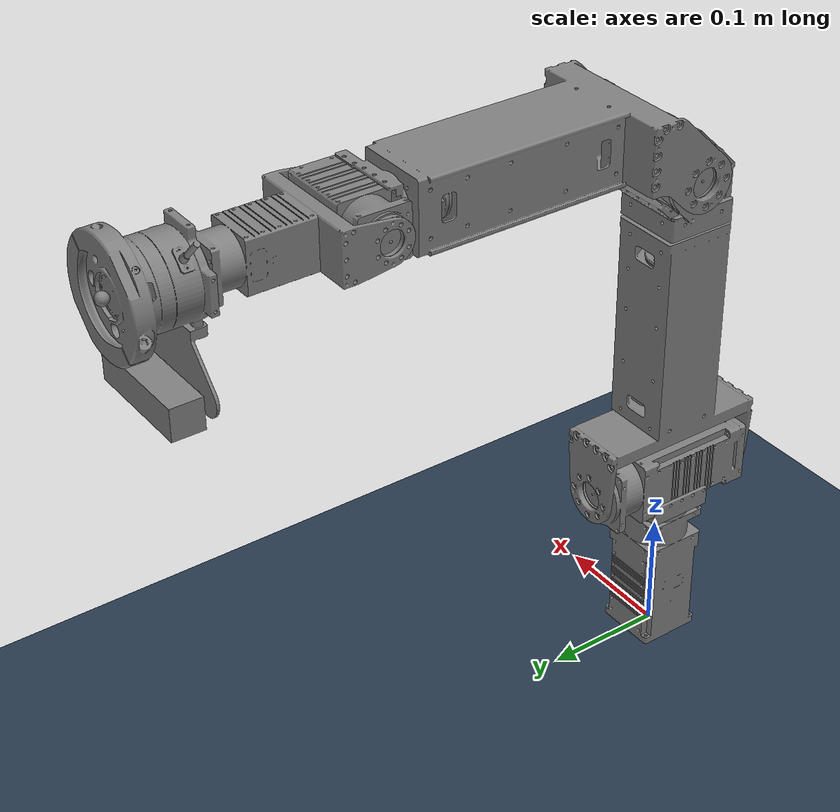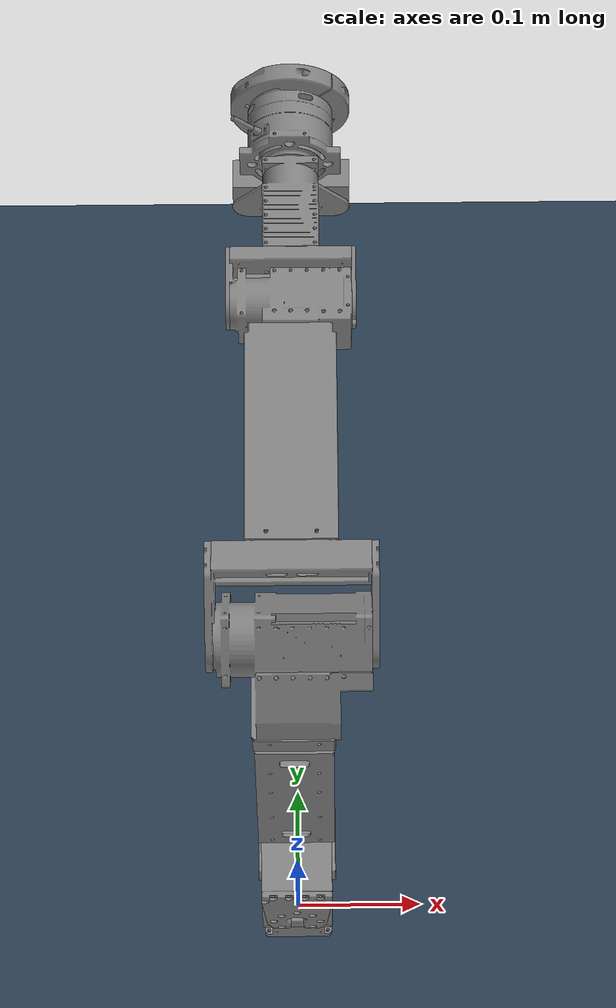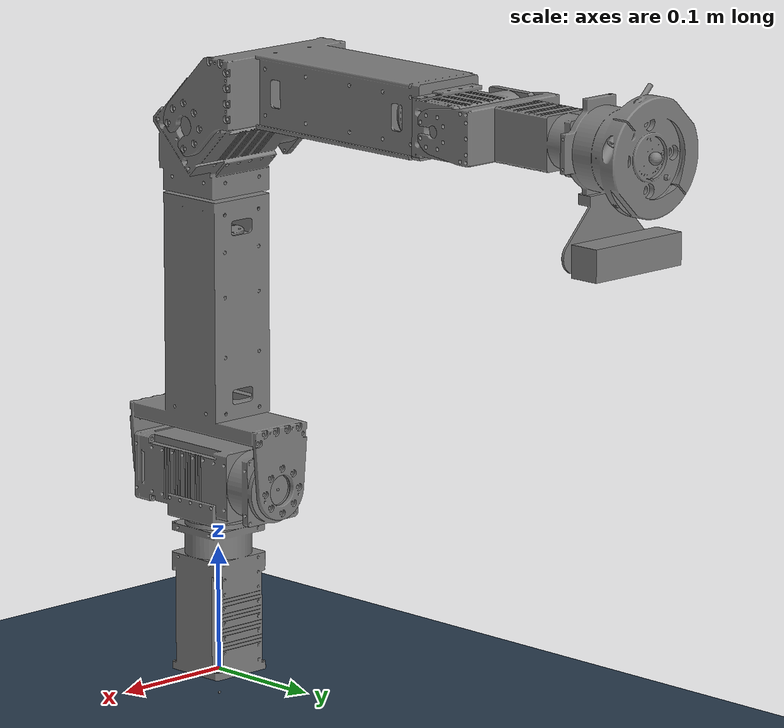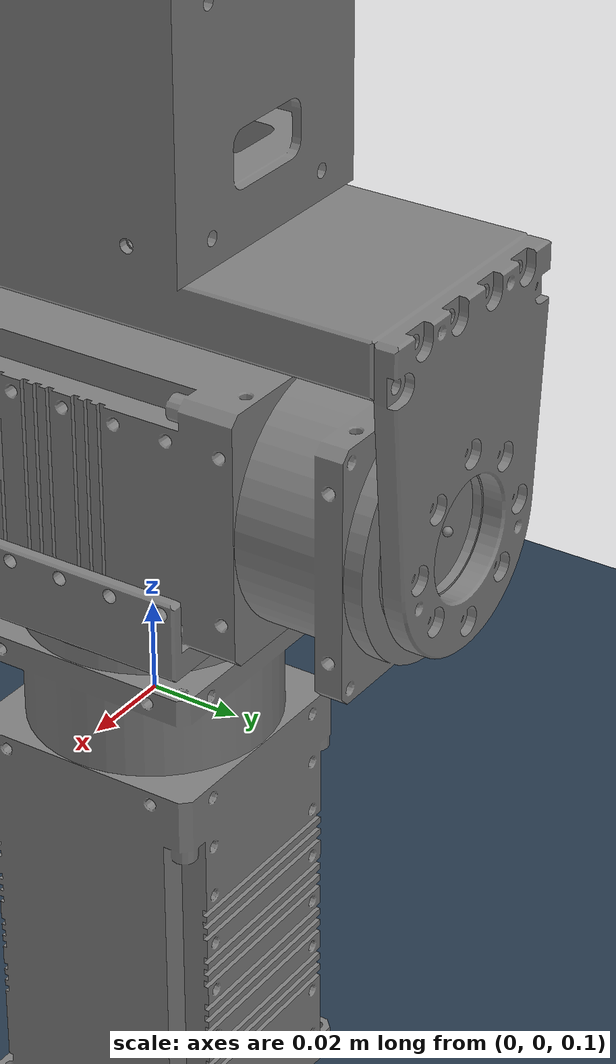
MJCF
<mujoco model="upper_body_assembly">
  <compiler angle="radian" autolimits="true"/>
  <default/>
  <include file="other/simple_scene.xml"/>
  <option cone="elliptic" gravity="0 0 -9.81" timestep="0.001" integrator="Euler">
        <flag contact="disable"/>
  </option>
  <asset>
    <mesh name="link1" file="mesh/open_manipulator_7dof/link1.stl" scale="0.001 0.001 0.001"/>
    <mesh name="link2" file="mesh/open_manipulator_7dof/link2.stl" scale="0.001 0.001 0.001"/>
    <mesh name="link3" file="mesh/open_manipulator_7dof/link3.stl" scale="0.001 0.001 0.001"/>
    <mesh name="link4" file="mesh/open_manipulator_7dof/link4.stl" scale="0.001 0.001 0.001"/>
    <mesh name="link5" file="mesh/open_manipulator_7dof/link5.stl" scale="0.001 0.001 0.001"/>
    <mesh name="link6" file="mesh/open_manipulator_7dof/link6.stl" scale="0.001 0.001 0.001"/>
    <mesh name="link7" file="mesh/open_manipulator_7dof/link7.stl" scale="0.001 0.001 0.001"/>
    <mesh name="Arm2Hand" file="mesh/open_manipulator_7dof/Arm2Hand.stl" scale="0.001 0.001 0.001"/>
  </asset>
  <worldbody>
    <site name="base_FT" pos="0 0 -0.02" type="sphere" size="0.001"/>

    <geom type="mesh" mesh="link1"/>
    <body name="rightarm_link2" pos="0 0 0.126" gravcomp="0">
      <inertial pos="0 0.000238 0.032024" quat="0.707038 0.707176 0 0" mass="0.943606" diaginertia="0.00155269 0.00154078 0.000453275"/>
      <joint name="rightarm_joint1" pos="0 0 0" axis="0 0 1" range="-2.98451 2.98451" armature="0.4"/>
      <site name="joint1_torque" pos="0 0 0" type="sphere" size="0.001"/>

      <geom type="mesh" mesh="link2"/>
      <body name="rightarm_link3" pos="0 0.069 0.033" gravcomp="0">
        <inertial pos="1e-06 -0.068947 0.116982" quat="0.999998 0.00210799 2.97476e-06 6.27079e-09" mass="1.28" diaginertia="0.00495528 0.00426937 0.00142563"/>
        <joint name="rightarm_joint2" pos="0 0 0" axis="0 1 0" range="-1.5708 1.5708" armature="0.4"/>
        <site name="joint2_torque" pos="0 0 0" type="sphere" size="0.001"/>

        <geom type="mesh" mesh="link3"/>
        <body name="rightarm_link4" pos="0 -0.069 0.195" quat="0.707107 0 0 0.707107" gravcomp="0">
          <inertial pos="0.021079 -0.00217 0.084922" quat="0.960347 -0.0467928 0.274844 0.00194528" mass="1.08" diaginertia="0.00185912 0.00127655 0.00122437"/>
          <joint name="rightarm_joint3" pos="0 0 0" axis="0 0 1" range="-2.35619 2.35619" armature="0.4"/>
          <site name="joint3_torque" pos="0 0 0" type="sphere" size="0.001"/>

          <geom type="mesh" mesh="link4"/>
          <body name="rightarm_link5" pos="0.029998 0.0575 0.097498" gravcomp="0">
            <inertial pos="0.120043 -0.056958 0.029662" quat="0.0010908 0.700837 0.000707795 0.71332" mass="1.2127" diaginertia="0.00440154 0.00403671 0.0011482"/>
            <joint name="rightarm_joint4" pos="0 0 0" axis="0 1 0" range="-2.04204 1.5708" armature="0.4"/>
            <site name="joint4_torque" pos="0 0 0" type="sphere" size="0.001"/>

            <geom type="mesh" mesh="link5"/>
            <body name="rightarm_link6" pos="0.195 -0.0575 0.03" gravcomp="0">
              <inertial pos="0.057143 -0.002069 0" quat="0.499395 0.500604 -0.499395 0.500604" mass="0.466355" diaginertia="0.000404989 0.000316834 0.000219587"/>
              <joint name="rightarm_joint5" pos="0 0 0" axis="1 0 0" range="-2.98451 2.98451" armature="0.2"/>
              <site name="joint5_torque" pos="0 0 0" type="sphere" size="0.001"/>

              <geom type="mesh" mesh="link6"/>
              <body name="rightarm_link7" pos="0.063 0.045 0" gravcomp="0">
                <inertial pos="0.069744 -0.045936 0" quat="-0.0353509 0.706223 0.0353509 0.706223" mass="0.425616" diaginertia="0.000471847 0.000408228 0.000187925"/>
                <joint name="rightarm_joint6" pos="0 0 0" axis="0 1 0" range="-1.5708 1.5708" armature="0.2"/>
                <site name="joint6_torque" pos="0 0 0" type="sphere" size="0.001"/>

                <geom type="mesh" mesh="link7"/>
                <body name="rightarm_fake_end_link" pos="0.123 -0.045 0" gravcomp="0">
                  <inertial pos="0.00227379 -0.00194384 -0.0343059" quat="0.672427 0.685432 -0.195301 0.199703" mass="1.03777" diaginertia="2.00411 2.00391 2.00072"/>
                  <joint name="rightarm_joint7" pos="0 0 0" axis="1 0 0" range="-2.98451 2.98451" armature="0.2"/>
                  <site name="joint7_torque" pos="0 0 0" type="sphere" size="0.001"/>
                  <site name='ee_site' pos="0.06 0 0" euler="-3.14159 0 0"/>

                  <geom quat="0 -1 0 0" type="mesh" mesh="Arm2Hand"/>
                  <geom size="0.012525 0.045 0.0125" pos="0.031875 0 -0.076" quat="0 -1 0 0" type="box"/>
                </body>
              </body>
            </body>
          </body>
        </body>
      </body>
    </body>
  </worldbody>
  <actuator>
    <motor name="gen3_actuator_1" joint="rightarm_joint1" gear="1" forcelimited="true" ctrllimited="true"  ctrlrange="-139 139" forcerange="-39 39"/>
    <motor name="gen3_actuator_2" joint="rightarm_joint2" gear="1" forcelimited="true" ctrllimited="true"  ctrlrange="-139 139" forcerange="-39 39"/>
    <motor name="gen3_actuator_3" joint="rightarm_joint3" gear="1" forcelimited="true" ctrllimited="true"  ctrlrange="-139 139" forcerange="-39 39"/>
    <motor name="gen3_actuator_4" joint="rightarm_joint4" gear="1" forcelimited="true" ctrllimited="true"  ctrlrange="-139 139" forcerange="-39 39"/>
    <motor name="gen3_actuator_5" joint="rightarm_joint5" gear="1" forcelimited="true" ctrllimited="true"  ctrlrange="-69 69" forcerange="-9 9"/>
    <motor name="gen3_actuator_6" joint="rightarm_joint6" gear="1" forcelimited="true" ctrllimited="true"  ctrlrange="-69 69" forcerange="-9 9"/>
    <motor name="gen3_actuator_7" joint="rightarm_joint7" gear="1" forcelimited="true" ctrllimited="true"  ctrlrange="-69 69" forcerange="-9 9"/>
  </actuator>

    <sensor>
        <torque name="joint1_torque_sensor" site="joint1_torque"/>
        <torque name="joint2_torque_sensor" site="joint2_torque"/>
        <torque name="joint3_torque_sensor" site="joint3_torque"/>
        <torque name="joint4_torque_sensor" site="joint4_torque"/>
        <torque name="joint5_torque_sensor" site="joint5_torque"/>
        <torque name="joint6_torque_sensor" site="joint6_torque"/>
        <torque name="joint7_torque_sensor" site="joint7_torque"/>

        <framepos name="ee_pos" objtype="site" objname="ee_site"/>
        <framequat name="ee_quat" objtype="site" objname="ee_site"/>

        <force name="F_sensor" site="base_FT"/>
        <torque name="T_sensor" site="base_FT"/>
    </sensor>

</mujoco>

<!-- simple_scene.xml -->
<mujoco>

    <asset>
        <texture name="texplane" type="2d" builtin="checker" rgb1=".2 .3 .4" rgb2=".1 0.15 0.2"
                width="512" height="512"/>
        <material name="MatGnd" reflectance="0.5" texture="texplane" texrepeat="1 1" texuniform="true"/>

    </asset>

    <worldbody>
        <light pos="0 0 1000" castshadow="false"/>
        <geom name="world_frame" pos="0 0 -0.02" size="5 5 10" material="MatGnd" type="plane" contype="1" conaffinity="1"/>

    </worldbody>
</mujoco>
